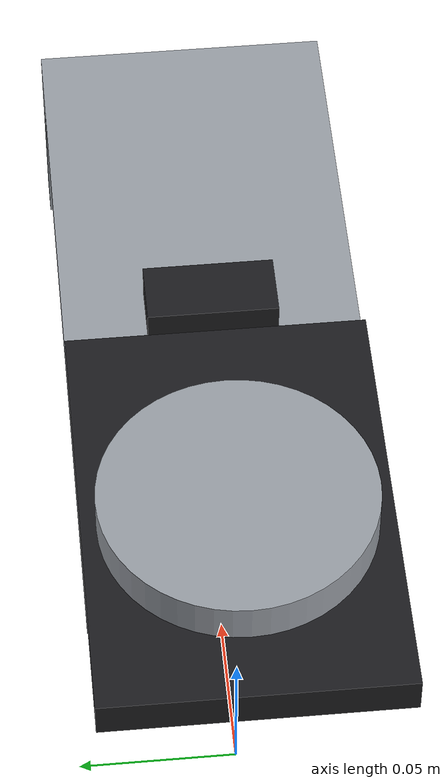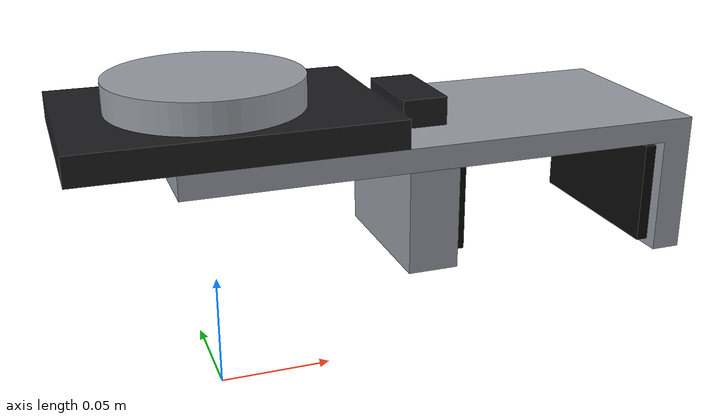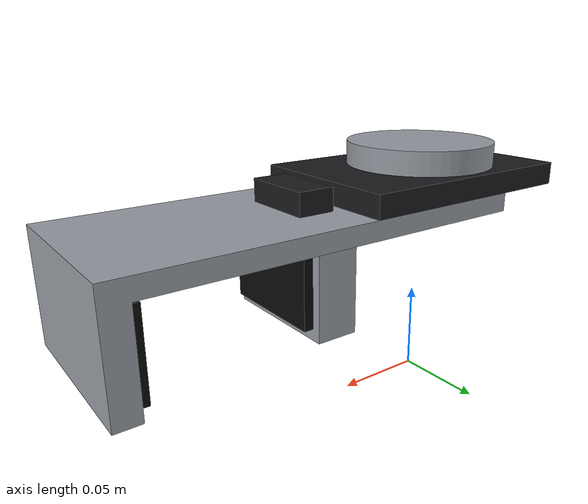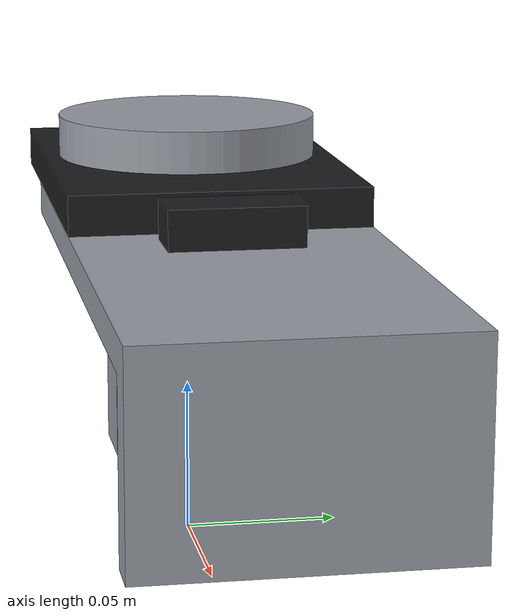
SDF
<?xml version='1.0'?>
<sdf version='1.7'>
  <model name='fixed_jaw_gripper'>

    <!-- ===== Fixed part: flange + body + integral L-jaw + fixed pad ===== -->
    <link name='base_link'>
      <inertial>
        <pose>0.03 0 0.09 0 0 0</pose>
        <mass>0.4</mass>
        <inertia>
          <ixx>0.0005</ixx><iyy>0.0012</iyy><izz>0.0012</izz>
          <ixy>0</ixy><ixz>0</ixz><iyz>0</iyz>
        </inertia>
      </inertial>

      <visual name='flange_visual'>
        <geometry><mesh><uri>model://gripper_long/meshes/flange.dae</uri></mesh></geometry>
      </visual>
      <visual name='body_visual'>
        <geometry><mesh><uri>model://gripper_long/meshes/body.dae</uri></mesh></geometry>
      </visual>
      <visual name='jaw_fixed_visual'>
        <geometry><mesh><uri>model://gripper_long/meshes/jaw_fixed.dae</uri></mesh></geometry>
      </visual>
      <visual name='pad_fixed_visual'>
        <geometry><mesh><uri>model://gripper_long/meshes/pad_fixed.dae</uri></mesh></geometry>
      </visual>

      <!-- Per-part STL collision (convex pieces keep the C-shape pocket open). -->
      <collision name='flange_col'>
        <geometry><mesh><uri>model://gripper_long/collision/flange.stl</uri></mesh></geometry>
        <surface><friction><ode><mu>1.2</mu><mu2>1.2</mu2></ode></friction></surface>
      </collision>
      <collision name='body_col'>
        <geometry><mesh><uri>model://gripper_long/collision/body.stl</uri></mesh></geometry>
        <surface><friction><ode><mu>1.2</mu><mu2>1.2</mu2></ode></friction></surface>
      </collision>
      <collision name='jaw_fixed_col'>
        <geometry><mesh><uri>model://gripper_long/collision/jaw_fixed.stl</uri></mesh></geometry>
        <surface><friction><ode><mu>1.2</mu><mu2>1.2</mu2></ode></friction></surface>
      </collision>
      <collision name='pad_fixed_col'>
        <geometry><mesh><uri>model://gripper_long/collision/pad_fixed.stl</uri></mesh></geometry>
        <surface><friction><ode><mu>1.2</mu><mu2>1.2</mu2></ode></friction></surface>
      </collision>
    </link>

    <!-- ===== Moving part: pusher (+ body connector) + moving pad ===== -->
    <link name='finger_link'>
      <inertial>
        <pose>0 0 0.085 0 0 0</pose>
        <mass>0.1</mass>
        <inertia>
          <ixx>0.00008</ixx><iyy>0.000046</iyy><izz>0.000045</izz>
          <ixy>0</ixy><ixz>0</ixz><iyz>0</iyz>
        </inertia>
      </inertial>

      <visual name='jaw_moving_visual'>
        <geometry><mesh><uri>model://gripper_long/meshes/jaw_moving.dae</uri></mesh></geometry>
      </visual>
      <visual name='pad_moving_visual'>
        <geometry><mesh><uri>model://gripper_long/meshes/pad_moving.dae</uri></mesh></geometry>
      </visual>

      <collision name='jaw_moving_col'>
        <geometry><mesh><uri>model://gripper_long/collision/jaw_moving.stl</uri></mesh></geometry>
        <surface><friction><ode><mu>1.2</mu><mu2>1.2</mu2></ode></friction></surface>
      </collision>
      <collision name='pad_moving_col'>
        <geometry><mesh><uri>model://gripper_long/collision/pad_moving.stl</uri></mesh></geometry>
        <surface><friction><ode><mu>1.2</mu><mu2>1.2</mu2></ode></friction></surface>
      </collision>
    </link>

    <joint name='finger_joint' type='prismatic'>
      <parent>base_link</parent>
      <child>finger_link</child>
      <axis>
        <xyz>1 0 0</xyz>
        <limit>
          <lower>-0.05</lower>
          <upper>0.07</upper>
          <effort>60</effort>
          <velocity>0.1</velocity>
        </limit>
        <dynamics><damping>5.0</damping><friction>1.0</friction></dynamics>
      </axis>
    </joint>

  </model>
</sdf>
